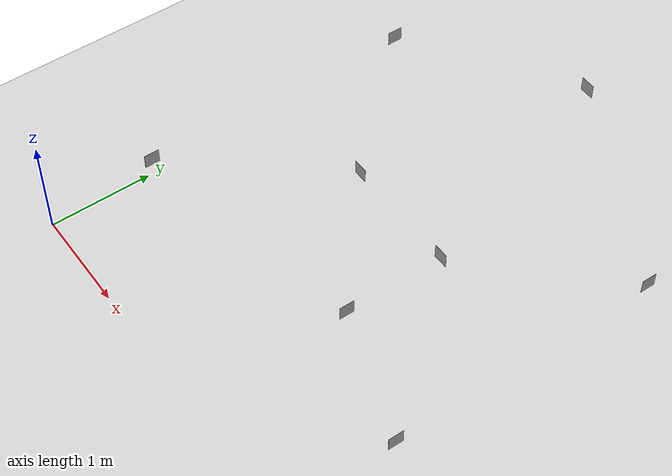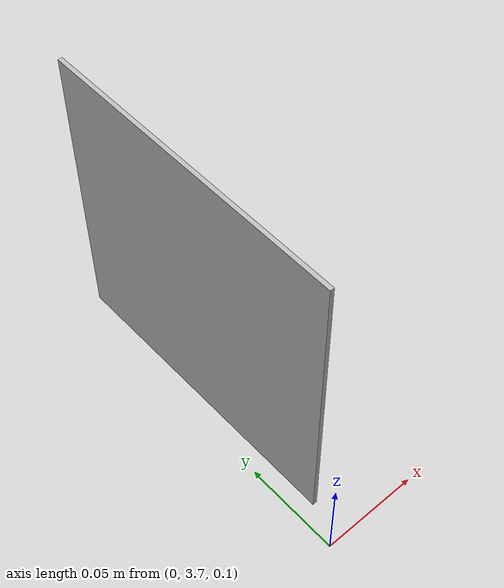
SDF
<sdf version="1.6">
 <world name="e80">
  <scene><shadows>true</shadows><ambient>0.4 0.4 0.4 1</ambient><background>0.7 0.7 0.7 1</background></scene>
  <include><uri>model://sun</uri></include>
  <include><uri>model://ground_plane</uri></include>
  <include>
   <uri>model://aruco_4</uri>
   <name>aruco_4</name>
   <pose>0.000000 1.050000 0.2000 0.000000 1.570796 0.000000</pose>
  </include>
  <include>
   <uri>model://aruco_0</uri>
   <name>aruco_0</name>
   <pose>0.000000 3.786000 0.2000 0.000000 1.570796 0.000000</pose>
  </include>
  <include>
   <uri>model://aruco_1</uri>
   <name>aruco_1</name>
   <pose>1.610000 4.847741 0.2000 1.570796 0.000000 0.000000</pose>
  </include>
  <include>
   <uri>model://aruco_2</uri>
   <name>aruco_2</name>
   <pose>3.655820 3.757000 0.2000 0.000000 -1.570796 0.000000</pose>
  </include>
  <include>
   <uri>model://aruco_3</uri>
   <name>aruco_3</name>
   <pose>3.655820 1.090000 0.2000 0.000000 -1.570796 0.000000</pose>
  </include>
  <include>
   <uri>model://aruco_6</uri>
   <name>aruco_6</name>
   <pose>1.217200 2.499262 0.2000 1.570796 0.000000 0.000000</pose>
  </include>
  <include>
   <uri>model://aruco_5</uri>
   <name>aruco_5</name>
   <pose>2.401577 2.497429 0.2000 1.570796 0.000000 0.000000</pose>
  </include>
  <include>
   <uri>model://aruco_10</uri>
   <name>aruco_10</name>
   <pose>2.401642 1.508212 0.2000 0.000000 1.570796 0.000000</pose>
  </include>
 </world>
</sdf>

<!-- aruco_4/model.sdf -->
<sdf version="1.6">
  <model name="aruco_4">
    <static>true</static>
    <link name="link">
      <visual name="visual">
        <geometry>
          <box>
            <size>0.15 0.15 0.002</size>
          </box>
        </geometry>
        <material>
          <script>
            <uri>model://aruco_4/materials/scripts</uri>
            <uri>model://aruco_4/materials/textures</uri>
            <name>aruco_4/Marker</name>
          </script>
        </material>
      </visual>
    </link>
  </model>
</sdf>

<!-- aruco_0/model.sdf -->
<sdf version="1.6">
  <model name="aruco_0">
    <static>true</static>
    <link name="link">
      <visual name="visual">
        <geometry>
          <box>
            <size>0.15 0.15 0.002</size>
          </box>
        </geometry>
        <material>
          <script>
            <uri>model://aruco_0/materials/scripts</uri>
            <uri>model://aruco_0/materials/textures</uri>
            <name>aruco_0/Marker</name>
          </script>
        </material>
      </visual>
    </link>
  </model>
</sdf>

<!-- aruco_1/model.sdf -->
<sdf version="1.6">
  <model name="aruco_1">
    <static>true</static>
    <link name="link">
      <visual name="visual">
        <geometry>
          <box>
            <size>0.15 0.15 0.002</size>
          </box>
        </geometry>
        <material>
          <script>
            <uri>model://aruco_1/materials/scripts</uri>
            <uri>model://aruco_1/materials/textures</uri>
            <name>aruco_1/Marker</name>
          </script>
        </material>
      </visual>
    </link>
  </model>
</sdf>

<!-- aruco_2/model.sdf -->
<sdf version="1.6">
  <model name="aruco_2">
    <static>true</static>
    <link name="link">
      <visual name="visual">
        <geometry>
          <box>
            <size>0.15 0.15 0.002</size>
          </box>
        </geometry>
        <material>
          <script>
            <uri>model://aruco_2/materials/scripts</uri>
            <uri>model://aruco_2/materials/textures</uri>
            <name>aruco_2/Marker</name>
          </script>
        </material>
      </visual>
    </link>
  </model>
</sdf>

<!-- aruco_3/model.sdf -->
<sdf version="1.6">
  <model name="aruco_3">
    <static>true</static>
    <link name="link">
      <visual name="visual">
        <geometry>
          <box>
            <size>0.15 0.15 0.002</size>
          </box>
        </geometry>
        <material>
          <script>
            <uri>model://aruco_3/materials/scripts</uri>
            <uri>model://aruco_3/materials/textures</uri>
            <name>aruco_3/Marker</name>
          </script>
        </material>
      </visual>
    </link>
  </model>
</sdf>

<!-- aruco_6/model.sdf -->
<sdf version="1.6">
  <model name="aruco_6">
    <static>true</static>
    <link name="link">
      <visual name="visual">
        <geometry>
          <box>
            <size>0.15 0.15 0.002</size>
          </box>
        </geometry>
        <material>
          <script>
            <uri>model://aruco_6/materials/scripts</uri>
            <uri>model://aruco_6/materials/textures</uri>
            <name>aruco_6/Marker</name>
          </script>
        </material>
      </visual>
    </link>
  </model>
</sdf>

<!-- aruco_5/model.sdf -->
<sdf version="1.6">
  <model name="aruco_5">
    <static>true</static>
    <link name="link">
      <visual name="visual">
        <geometry>
          <box>
            <size>0.15 0.15 0.002</size>
          </box>
        </geometry>
        <material>
          <script>
            <uri>model://aruco_5/materials/scripts</uri>
            <uri>model://aruco_5/materials/textures</uri>
            <name>aruco_5/Marker</name>
          </script>
        </material>
      </visual>
    </link>
  </model>
</sdf>

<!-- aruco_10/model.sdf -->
<sdf version="1.6">
  <model name="aruco_10">
    <static>true</static>
    <link name="link">
      <visual name="visual">
        <geometry>
          <box>
            <size>0.15 0.15 0.002</size>
          </box>
        </geometry>
        <material>
          <script>
            <uri>model://aruco_10/materials/scripts</uri>
            <uri>model://aruco_10/materials/textures</uri>
            <name>aruco_10/Marker</name>
          </script>
        </material>
      </visual>
    </link>
  </model>
</sdf>
